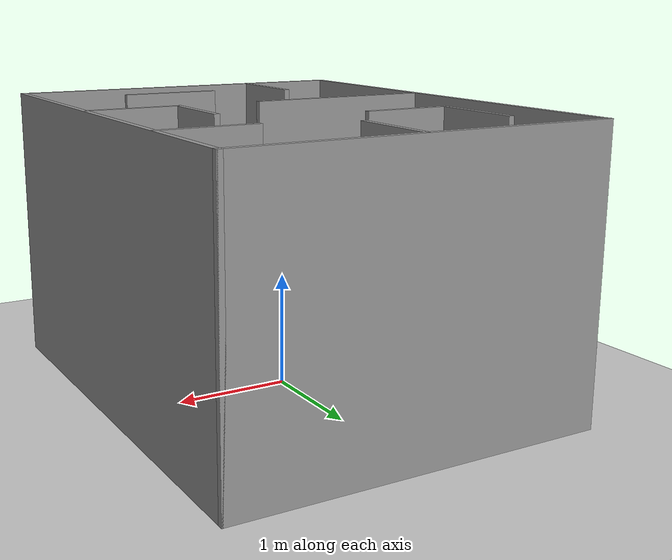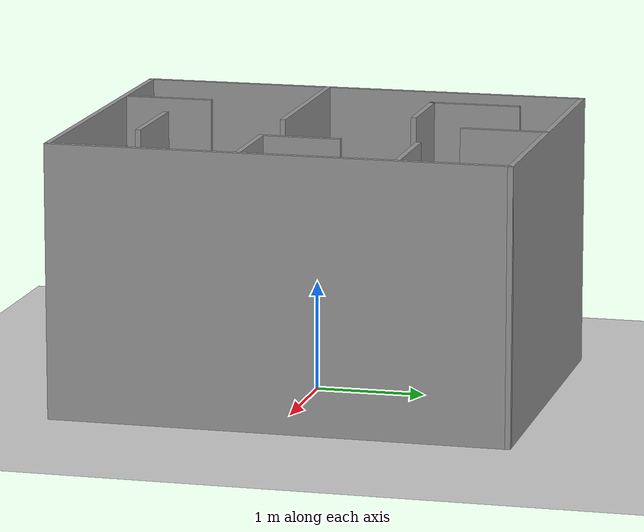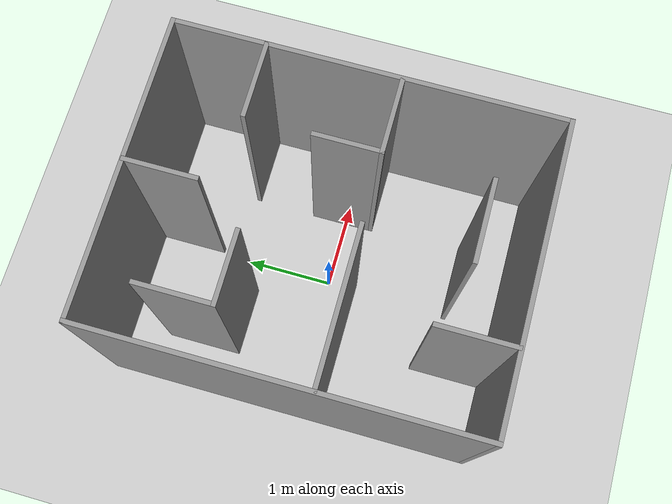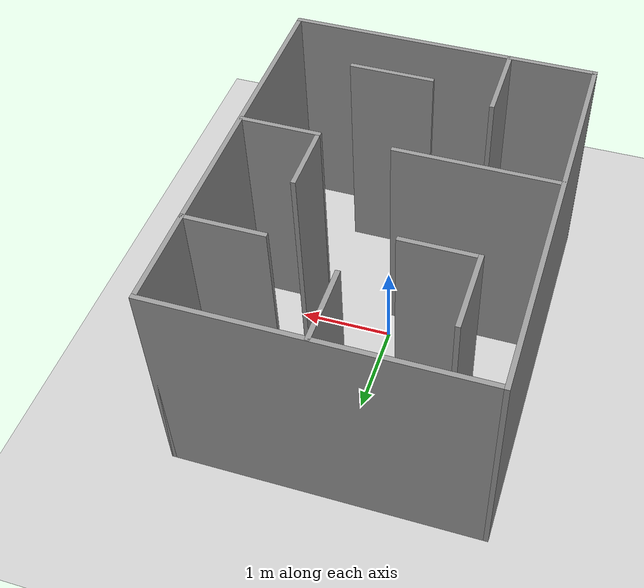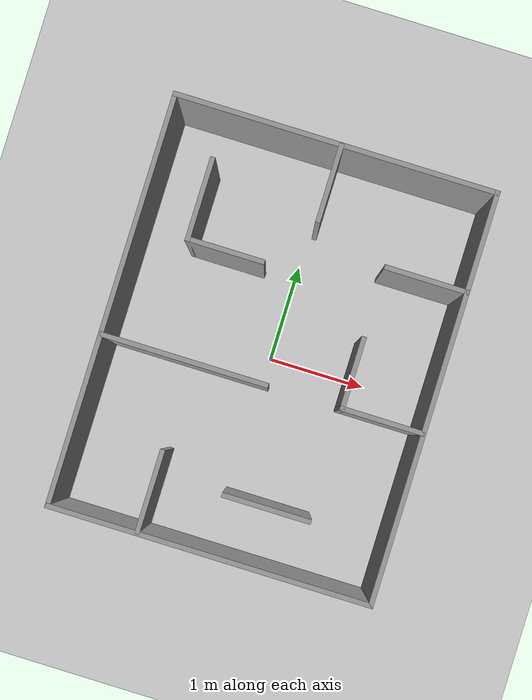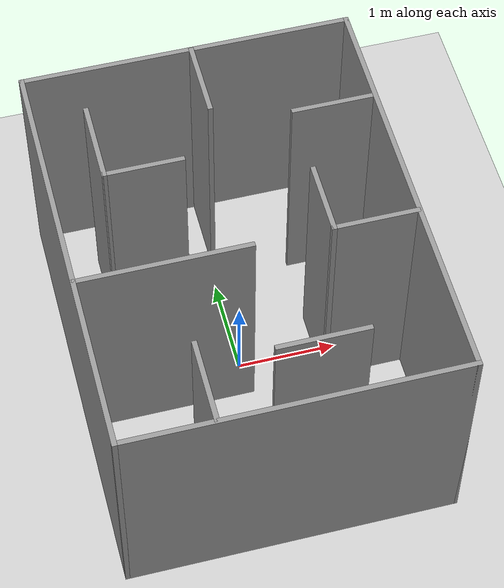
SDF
<sdf version="1.7">
 <world name="default">
  <light name="sun" type="directional">
   <pose>0 0 10 0 -0 0</pose>
   <diffuse>0.8 0.8 0.8 1</diffuse>
   <specular>0.2 0.2 0.2 1</specular>
   <attenuation>
    <range>1000</range>
    <constant>0.9</constant>
    <linear>0.01</linear>
    <quadratic>0.001</quadratic>
   </attenuation>
   <direction>-0.5 0.1 -0.9</direction>
   <spot><inner_angle>0</inner_angle><outer_angle>0</outer_angle><falloff>0</falloff></spot>
  </light>
  <model name="ground_plane">
   <static>1</static>
   <link name="link">
    <collision name="collision">
     <geometry><plane><normal>0 0 1</normal><size>100 100</size></plane></geometry>
     <surface>
      <contact><collide_bitmask>65535</collide_bitmask></contact>
      <friction><ode><mu>100</mu><mu2>50</mu2></ode></friction>
     </surface>
    </collision>
    <visual name="visual">
     <cast_shadows>0</cast_shadows>
     <geometry><plane><normal>0 0 1</normal><size>100 100</size></plane></geometry>
     <material>
      <script><uri>file://media/materials/scripts/gazebo.material</uri><name>Gazebo/Grey</name></script>
     </material>
    </visual>
   </link>
  </model>
  <gravity>0 0 -9.8</gravity>
  <magnetic_field>6e-06 2.3e-05 -4.2e-05</magnetic_field>
  <atmosphere type="adiabatic"/>
  <physics type="ode">
   <max_step_size>0.001</max_step_size>
   <real_time_factor>1</real_time_factor>
   <real_time_update_rate>1000</real_time_update_rate>
  </physics>
  <scene><ambient>0.4 0.4 0.4 1</ambient><background>0.7 0.7 0.7 1</background><shadows>1</shadows></scene>
  <spherical_coordinates>
   <surface_model>EARTH_WGS84</surface_model>
   <latitude_deg>0</latitude_deg>
   <longitude_deg>0</longitude_deg>
   <elevation>0</elevation>
   <heading_deg>0</heading_deg>
  </spherical_coordinates>
  <model name="level">
   <pose>0.007132 0.042798 0 0 -0 0</pose>
   <link name="Wall_0">
    <collision name="Wall_0_Collision">
     <geometry><box><size>4.2 0.05 2.5</size></box></geometry>
     <pose>0 0 1.25 0 -0 0</pose>
    </collision>
    <visual name="Wall_0_Visual">
     <pose>0 0 1.25 0 -0 0</pose>
     <geometry><box><size>4.2 0.05 2.5</size></box></geometry>
     <material>
      <script><uri>file://media/materials/scripts/gazebo.material</uri><name>Gazebo/Grey</name></script>
      <ambient>1 1 1 1</ambient>
     </material>
     <meta><layer>0</layer></meta>
    </visual>
    <pose>-1.625 -0 0 0 -0 1.5708</pose>
   </link>
   <link name="Wall_20">
    <collision name="Wall_20_Collision">
     <geometry><box><size>0.85 0.05 2.5</size></box></geometry>
     <pose>0 0 1.25 0 -0 0</pose>
    </collision>
    <visual name="Wall_20_Visual">
     <pose>0 0 1.25 0 -0 0</pose>
     <geometry><box><size>0.85 0.05 2.5</size></box></geometry>
     <material>
      <script><uri>file://media/materials/scripts/gazebo.material</uri><name>Gazebo/Grey</name></script>
      <ambient>1 1 1 1</ambient>
     </material>
     <meta><layer>0</layer></meta>
    </visual>
    <pose>-0.725 -1.658 0 0 -0 1.5708</pose>
   </link>
   <link name="Wall_22">
    <collision name="Wall_22_Collision">
     <geometry><box><size>0.899931 0.05 2.5</size></box></geometry>
     <pose>0 0 1.25 0 -0 0</pose>
    </collision>
    <visual name="Wall_22_Visual">
     <pose>0 0 1.25 0 -0 0</pose>
     <geometry><box><size>0.899931 0.05 2.5</size></box></geometry>
     <material>
      <script><uri>file://media/materials/scripts/gazebo.material</uri><name>Gazebo/Grey</name></script>
      <ambient>1 1 1 1</ambient>
     </material>
     <meta><layer>0</layer></meta>
    </visual>
    <pose>0.393 -1.479 0 0 -0 0</pose>
   </link>
   <link name="Wall_24">
    <collision name="Wall_24_Collision">
     <geometry><box><size>1.7 0.05 2.5</size></box></geometry>
     <pose>0 0 1.25 0 -0 0</pose>
    </collision>
    <visual name="Wall_24_Visual">
     <pose>0 0 1.25 0 -0 0</pose>
     <geometry><box><size>1.7 0.05 2.5</size></box></geometry>
     <material>
      <script><uri>file://media/materials/scripts/gazebo.material</uri><name>Gazebo/Grey</name></script>
      <ambient>1 1 1 1</ambient>
     </material>
     <meta><layer>0</layer></meta>
    </visual>
    <pose>-0.787 -0.349 0 0 -0 0</pose>
   </link>
   <link name="Wall_26">
    <collision name="Wall_26_Collision">
     <geometry><box><size>0.85 0.05 2.5</size></box></geometry>
     <pose>0 0 1.25 0 -0 0</pose>
    </collision>
    <visual name="Wall_26_Visual">
     <pose>0 0 1.25 0 -0 0</pose>
     <geometry><box><size>0.85 0.05 2.5</size></box></geometry>
     <material>
      <script><uri>file://media/materials/scripts/gazebo.material</uri><name>Gazebo/Grey</name></script>
      <ambient>1 1 1 1</ambient>
     </material>
     <meta><layer>0</layer></meta>
    </visual>
    <pose>1.207 -0.349 0 0 -0 3.14159</pose>
   </link>
   <link name="Wall_28">
    <collision name="Wall_28_Collision">
     <geometry><box><size>0.75 0.05 2.5</size></box></geometry>
     <pose>0 0 1.25 0 -0 0</pose>
    </collision>
    <visual name="Wall_28_Visual">
     <pose>0 0 1.25 0 -0 0</pose>
     <geometry><box><size>0.75 0.05 2.5</size></box></geometry>
     <material>
      <script><uri>file://media/materials/scripts/gazebo.material</uri><name>Gazebo/Grey</name></script>
      <ambient>1 1 1 1</ambient>
     </material>
     <meta><layer>0</layer></meta>
    </visual>
    <pose>0.807 0.001 0 0 -0 1.5708</pose>
   </link>
   <link name="Wall_30">
    <collision name="Wall_30_Collision">
     <geometry><box><size>0.85 0.05 2.5</size></box></geometry>
     <pose>0 0 1.25 0 -0 0</pose>
    </collision>
    <visual name="Wall_30_Visual">
     <pose>0 0 1.25 0 -0 0</pose>
     <geometry><box><size>0.85 0.05 2.5</size></box></geometry>
     <material>
      <script><uri>file://media/materials/scripts/gazebo.material</uri><name>Gazebo/Grey</name></script>
      <ambient>1 1 1 1</ambient>
     </material>
     <meta><layer>0</layer></meta>
    </visual>
    <pose>1.218 1.075 0 0 -0 3.14159</pose>
   </link>
   <link name="Wall_39">
    <collision name="Wall_39_Collision">
     <geometry><box><size>0.85 0.05 2.5</size></box></geometry>
     <pose>0 0 1.25 0 -0 0</pose>
    </collision>
    <visual name="Wall_39_Visual">
     <pose>0 0 1.25 0 -0 0</pose>
     <geometry><box><size>0.85 0.05 2.5</size></box></geometry>
     <material>
      <script><uri>file://media/materials/scripts/gazebo.material</uri><name>Gazebo/Grey</name></script>
      <ambient>1 1 1 1</ambient>
     </material>
     <meta><layer>0</layer></meta>
    </visual>
    <pose>-1.097 1.175 0 0 -0 -1.5708</pose>
   </link>
   <link name="Wall_41">
    <collision name="Wall_41_Collision">
     <geometry><box><size>0.8 0.05 2.5</size></box></geometry>
     <pose>0 0 1.25 0 -0 0</pose>
    </collision>
    <visual name="Wall_41_Visual">
     <pose>0 0 1.25 0 -0 0</pose>
     <geometry><box><size>0.8 0.05 2.5</size></box></geometry>
     <material>
      <script><uri>file://media/materials/scripts/gazebo.material</uri><name>Gazebo/Grey</name></script>
      <ambient>1 1 1 1</ambient>
     </material>
     <meta><layer>0</layer></meta>
    </visual>
    <pose>-0.722 0.775 0 0 -0 0</pose>
   </link>
   <link name="Wall_43">
    <collision name="Wall_43_Collision">
     <geometry><box><size>0.8 0.05 2.5</size></box></geometry>
     <pose>0 0 1.25 0 -0 0</pose>
    </collision>
    <visual name="Wall_43_Visual">
     <pose>0 0 1.25 0 -0 0</pose>
     <geometry><box><size>0.8 0.05 2.5</size></box></geometry>
     <material>
      <script><uri>file://media/materials/scripts/gazebo.material</uri><name>Gazebo/Grey</name></script>
      <ambient>1 1 1 1</ambient>
     </material>
     <meta><layer>0</layer></meta>
    </visual>
    <pose>0.052764 1.69223 0 0 -0 -1.5708</pose>
   </link>
   <link name="Wall_5">
    <collision name="Wall_5_Collision">
     <geometry><box><size>3.3 0.05 2.5</size></box></geometry>
     <pose>0 0 1.25 0 -0 0</pose>
    </collision>
    <visual name="Wall_5_Visual">
     <pose>0 0 1.25 0 -0 0</pose>
     <geometry><box><size>3.3 0.05 2.5</size></box></geometry>
     <material>
      <script><uri>file://media/materials/scripts/gazebo.material</uri><name>Gazebo/Grey</name></script>
      <ambient>1 1 1 1</ambient>
     </material>
     <meta><layer>0</layer></meta>
    </visual>
    <pose>0 -2.075 0 0 -0 0</pose>
   </link>
   <link name="Wall_7">
    <collision name="Wall_7_Collision">
     <geometry><box><size>4.2 0.05 2.5</size></box></geometry>
     <pose>0 0 1.25 0 -0 0</pose>
    </collision>
    <visual name="Wall_7_Visual">
     <pose>0 0 1.25 0 -0 0</pose>
     <geometry><box><size>4.2 0.05 2.5</size></box></geometry>
     <material>
      <script><uri>file://media/materials/scripts/gazebo.material</uri><name>Gazebo/Grey</name></script>
      <ambient>1 1 1 1</ambient>
     </material>
     <meta><layer>0</layer></meta>
    </visual>
    <pose>1.625 -0 0 0 -0 1.5708</pose>
   </link>
   <link name="Wall_9">
    <collision name="Wall_9_Collision">
     <geometry><box><size>3.3 0.05 2.5</size></box></geometry>
     <pose>0 0 1.25 0 -0 0</pose>
    </collision>
    <visual name="Wall_9_Visual">
     <pose>0 0 1.25 0 -0 0</pose>
     <geometry><box><size>3.3 0.05 2.5</size></box></geometry>
     <material>
      <script><uri>file://media/materials/scripts/gazebo.material</uri><name>Gazebo/Grey</name></script>
      <ambient>1 1 1 1</ambient>
     </material>
     <meta><layer>0</layer></meta>
    </visual>
    <pose>0 2.075 0 0 -0 0</pose>
   </link>
   <static>1</static>
  </model>
 </world>
</sdf>
